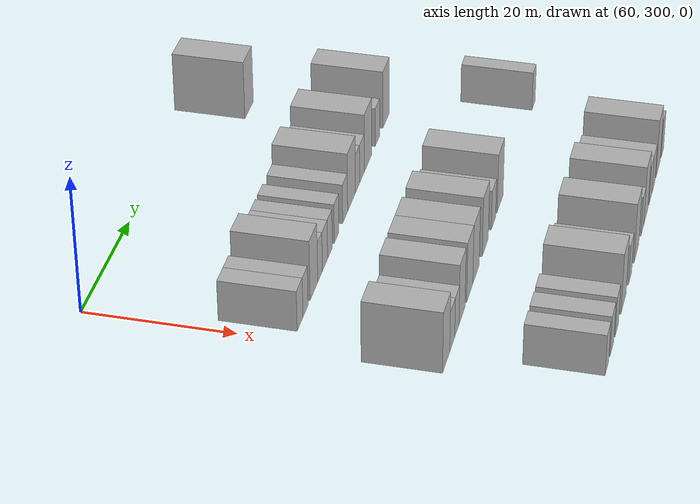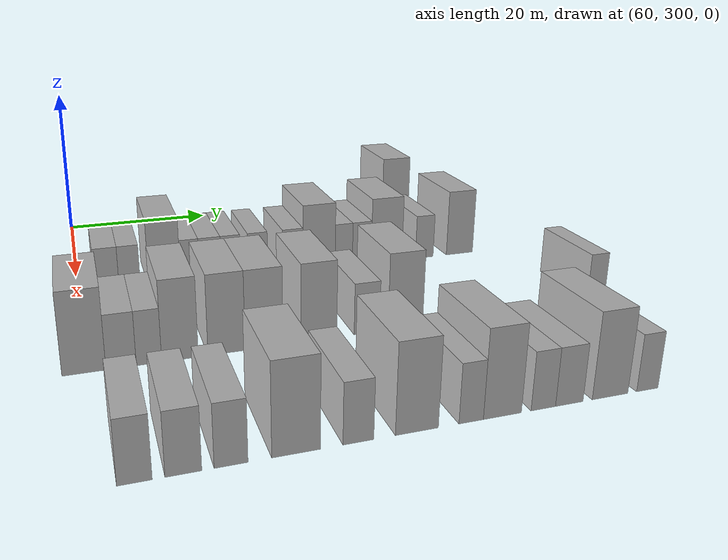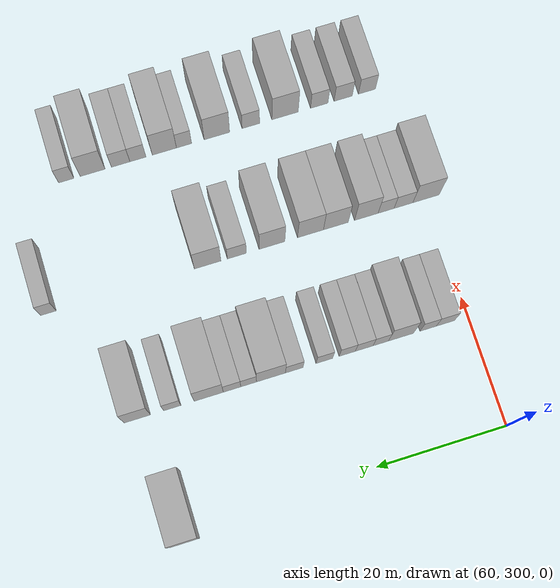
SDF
<sdf version="1.6">
 <world name="default">
  <model name="building_520">
   <static>1</static>
   <pose>63.0000 349.4359 0 0.000000 0.000000 0.000000</pose>
   <link name="link">
    <pose>0 0 4.50 0 0 0</pose>
    <collision name="collision"><geometry><box><size>10.0000 4.4609 9.0000</size></box></geometry></collision>
    <visual name="visual">
     <cast_shadows>0</cast_shadows>
     <geometry><box><size>10.0000 4.4609 9.0000</size></box></geometry>
     <material>
      <script>
       <uri>model://HANNAS_wall/materials/scripts</uri>
       <uri>model://HANNAS_wall/materials/textures</uri>
       <name>vrc/HANNAS_wall</name>
      </script>
     </material>
    </visual>
   </link>
  </model>
  <model name="building_681">
   <static>1</static>
   <pose>82.0000 303.5304 0 0.000000 0.000000 0.000000</pose>
   <link name="link">
    <pose>0 0 3.00 0 0 0</pose>
    <collision name="collision"><geometry><box><size>10.0000 2.8734 6.0000</size></box></geometry></collision>
    <visual name="visual">
     <cast_shadows>0</cast_shadows>
     <geometry><box><size>10.0000 2.8734 6.0000</size></box></geometry>
     <material>
      <script>
       <uri>model://HANNAS_wall/materials/scripts</uri>
       <uri>model://HANNAS_wall/materials/textures</uri>
       <name>vrc/HANNAS_wall</name>
      </script>
     </material>
    </visual>
   </link>
  </model>
  <model name="building_682">
   <static>1</static>
   <pose>82.0000 306.2466 0 0.000000 0.000000 0.000000</pose>
   <link name="link">
    <pose>0 0 3.00 0 0 0</pose>
    <collision name="collision"><geometry><box><size>10.0000 2.5589 6.0000</size></box></geometry></collision>
    <visual name="visual">
     <cast_shadows>0</cast_shadows>
     <geometry><box><size>10.0000 2.5589 6.0000</size></box></geometry>
     <material>
      <script>
       <uri>model://HANNAS_wall/materials/scripts</uri>
       <uri>model://HANNAS_wall/materials/textures</uri>
       <name>vrc/HANNAS_wall</name>
      </script>
     </material>
    </visual>
   </link>
  </model>
  <model name="building_683">
   <static>1</static>
   <pose>82.0000 310.4907 0 0.000000 0.000000 0.000000</pose>
   <link name="link">
    <pose>0 0 4.50 0 0 0</pose>
    <collision name="collision"><geometry><box><size>10.0000 3.9294 9.0000</size></box></geometry></collision>
    <visual name="visual">
     <cast_shadows>0</cast_shadows>
     <geometry><box><size>10.0000 3.9294 9.0000</size></box></geometry>
     <material>
      <script>
       <uri>model://HANNAS_wall/materials/scripts</uri>
       <uri>model://HANNAS_wall/materials/textures</uri>
       <name>vrc/HANNAS_wall</name>
      </script>
     </material>
    </visual>
   </link>
  </model>
  <model name="building_684">
   <static>1</static>
   <pose>82.0000 313.6562 0 0.000000 0.000000 0.000000</pose>
   <link name="link">
    <pose>0 0 3.00 0 0 0</pose>
    <collision name="collision"><geometry><box><size>10.0000 2.4016 6.0000</size></box></geometry></collision>
    <visual name="visual">
     <cast_shadows>0</cast_shadows>
     <geometry><box><size>10.0000 2.4016 6.0000</size></box></geometry>
     <material>
      <script>
       <uri>model://HANNAS_wall/materials/scripts</uri>
       <uri>model://HANNAS_wall/materials/textures</uri>
       <name>vrc/HANNAS_wall</name>
      </script>
     </material>
    </visual>
   </link>
  </model>
  <model name="building_685">
   <static>1</static>
   <pose>82.0000 316.2401 0 0.000000 0.000000 0.000000</pose>
   <link name="link">
    <pose>0 0 3.00 0 0 0</pose>
    <collision name="collision"><geometry><box><size>10.0000 2.7661 6.0000</size></box></geometry></collision>
    <visual name="visual">
     <cast_shadows>0</cast_shadows>
     <geometry><box><size>10.0000 2.7661 6.0000</size></box></geometry>
     <material>
      <script>
       <uri>model://HANNAS_wall/materials/scripts</uri>
       <uri>model://HANNAS_wall/materials/textures</uri>
       <name>vrc/HANNAS_wall</name>
      </script>
     </material>
    </visual>
   </link>
  </model>
  <model name="building_686">
   <static>1</static>
   <pose>82.0000 318.8673 0 0.000000 0.000000 0.000000</pose>
   <link name="link">
    <pose>0 0 3.00 0 0 0</pose>
    <collision name="collision"><geometry><box><size>10.0000 2.4885 6.0000</size></box></geometry></collision>
    <visual name="visual">
     <cast_shadows>0</cast_shadows>
     <geometry><box><size>10.0000 2.4885 6.0000</size></box></geometry>
     <material>
      <script>
       <uri>model://HANNAS_wall/materials/scripts</uri>
       <uri>model://HANNAS_wall/materials/textures</uri>
       <name>vrc/HANNAS_wall</name>
      </script>
     </material>
    </visual>
   </link>
  </model>
  <model name="building_687">
   <static>1</static>
   <pose>82.0000 322.3942 0 0.000000 0.000000 0.000000</pose>
   <link name="link">
    <pose>0 0 3.00 0 0 0</pose>
    <collision name="collision"><geometry><box><size>10.0000 2.5652 6.0000</size></box></geometry></collision>
    <visual name="visual">
     <cast_shadows>0</cast_shadows>
     <geometry><box><size>10.0000 2.5652 6.0000</size></box></geometry>
     <material>
      <script>
       <uri>model://HANNAS_wall/materials/scripts</uri>
       <uri>model://HANNAS_wall/materials/textures</uri>
       <name>vrc/HANNAS_wall</name>
      </script>
     </material>
    </visual>
   </link>
  </model>
  <model name="building_688">
   <static>1</static>
   <pose>82.0000 327.0456 0 0.000000 0.000000 0.000000</pose>
   <link name="link">
    <pose>0 0 3.00 0 0 0</pose>
    <collision name="collision"><geometry><box><size>10.0000 2.7375 6.0000</size></box></geometry></collision>
    <visual name="visual">
     <cast_shadows>0</cast_shadows>
     <geometry><box><size>10.0000 2.7375 6.0000</size></box></geometry>
     <material>
      <script>
       <uri>model://HANNAS_wall/materials/scripts</uri>
       <uri>model://HANNAS_wall/materials/textures</uri>
       <name>vrc/HANNAS_wall</name>
      </script>
     </material>
    </visual>
   </link>
  </model>
  <model name="building_689">
   <static>1</static>
   <pose>82.0000 330.6315 0 0.000000 0.000000 0.000000</pose>
   <link name="link">
    <pose>0 0 4.50 0 0 0</pose>
    <collision name="collision"><geometry><box><size>10.0000 4.4342 9.0000</size></box></geometry></collision>
    <visual name="visual">
     <cast_shadows>0</cast_shadows>
     <geometry><box><size>10.0000 4.4342 9.0000</size></box></geometry>
     <material>
      <script>
       <uri>model://HANNAS_wall/materials/scripts</uri>
       <uri>model://HANNAS_wall/materials/textures</uri>
       <name>vrc/HANNAS_wall</name>
      </script>
     </material>
    </visual>
   </link>
  </model>
  <model name="building_690">
   <static>1</static>
   <pose>82.0000 334.0553 0 0.000000 0.000000 0.000000</pose>
   <link name="link">
    <pose>0 0 3.00 0 0 0</pose>
    <collision name="collision"><geometry><box><size>10.0000 2.4134 6.0000</size></box></geometry></collision>
    <visual name="visual">
     <cast_shadows>0</cast_shadows>
     <geometry><box><size>10.0000 2.4134 6.0000</size></box></geometry>
     <material>
      <script>
       <uri>model://HANNAS_wall/materials/scripts</uri>
       <uri>model://HANNAS_wall/materials/textures</uri>
       <name>vrc/HANNAS_wall</name>
      </script>
     </material>
    </visual>
   </link>
  </model>
  <model name="building_691">
   <static>1</static>
   <pose>82.0000 336.5985 0 0.000000 0.000000 0.000000</pose>
   <link name="link">
    <pose>0 0 3.00 0 0 0</pose>
    <collision name="collision"><geometry><box><size>10.0000 2.6731 6.0000</size></box></geometry></collision>
    <visual name="visual">
     <cast_shadows>0</cast_shadows>
     <geometry><box><size>10.0000 2.6731 6.0000</size></box></geometry>
     <material>
      <script>
       <uri>model://HANNAS_wall/materials/scripts</uri>
       <uri>model://HANNAS_wall/materials/textures</uri>
       <name>vrc/HANNAS_wall</name>
      </script>
     </material>
    </visual>
   </link>
  </model>
  <model name="building_692">
   <static>1</static>
   <pose>82.0000 340.1604 0 0.000000 0.000000 0.000000</pose>
   <link name="link">
    <pose>0 0 4.50 0 0 0</pose>
    <collision name="collision"><geometry><box><size>10.0000 4.4508 9.0000</size></box></geometry></collision>
    <visual name="visual">
     <cast_shadows>0</cast_shadows>
     <geometry><box><size>10.0000 4.4508 9.0000</size></box></geometry>
     <material>
      <script>
       <uri>model://HANNAS_wall/materials/scripts</uri>
       <uri>model://HANNAS_wall/materials/textures</uri>
       <name>vrc/HANNAS_wall</name>
      </script>
     </material>
    </visual>
   </link>
  </model>
  <model name="building_693">
   <static>1</static>
   <pose>82.0000 345.6992 0 0.000000 0.000000 0.000000</pose>
   <link name="link">
    <pose>0 0 3.00 0 0 0</pose>
    <collision name="collision"><geometry><box><size>10.0000 2.6267 6.0000</size></box></geometry></collision>
    <visual name="visual">
     <cast_shadows>0</cast_shadows>
     <geometry><box><size>10.0000 2.6267 6.0000</size></box></geometry>
     <material>
      <script>
       <uri>model://HANNAS_wall/materials/scripts</uri>
       <uri>model://HANNAS_wall/materials/textures</uri>
       <name>vrc/HANNAS_wall</name>
      </script>
     </material>
    </visual>
   </link>
  </model>
  <model name="building_694">
   <static>1</static>
   <pose>82.0000 351.0036 0 0.000000 0.000000 0.000000</pose>
   <link name="link">
    <pose>0 0 4.50 0 0 0</pose>
    <collision name="collision"><geometry><box><size>10.0000 3.9822 9.0000</size></box></geometry></collision>
    <visual name="visual">
     <cast_shadows>0</cast_shadows>
     <geometry><box><size>10.0000 3.9822 9.0000</size></box></geometry>
     <material>
      <script>
       <uri>model://HANNAS_wall/materials/scripts</uri>
       <uri>model://HANNAS_wall/materials/textures</uri>
       <name>vrc/HANNAS_wall</name>
      </script>
     </material>
    </visual>
   </link>
  </model>
  <model name="building_854">
   <static>1</static>
   <pose>101.0000 300.0385 0 0.000000 0.000000 0.000000</pose>
   <link name="link">
    <pose>0 0 4.50 0 0 0</pose>
    <collision name="collision"><geometry><box><size>10.0000 4.2359 9.0000</size></box></geometry></collision>
    <visual name="visual">
     <cast_shadows>0</cast_shadows>
     <geometry><box><size>10.0000 4.2359 9.0000</size></box></geometry>
     <material>
      <script>
       <uri>model://HANNAS_wall/materials/scripts</uri>
       <uri>model://HANNAS_wall/materials/textures</uri>
       <name>vrc/HANNAS_wall</name>
      </script>
     </material>
    </visual>
   </link>
  </model>
  <model name="building_855">
   <static>1</static>
   <pose>101.0000 303.6534 0 0.000000 0.000000 0.000000</pose>
   <link name="link">
    <pose>0 0 3.00 0 0 0</pose>
    <collision name="collision"><geometry><box><size>10.0000 2.9938 6.0000</size></box></geometry></collision>
    <visual name="visual">
     <cast_shadows>0</cast_shadows>
     <geometry><box><size>10.0000 2.9938 6.0000</size></box></geometry>
     <material>
      <script>
       <uri>model://HANNAS_wall/materials/scripts</uri>
       <uri>model://HANNAS_wall/materials/textures</uri>
       <name>vrc/HANNAS_wall</name>
      </script>
     </material>
    </visual>
   </link>
  </model>
  <model name="building_856">
   <static>1</static>
   <pose>101.0000 306.4250 0 0.000000 0.000000 0.000000</pose>
   <link name="link">
    <pose>0 0 3.00 0 0 0</pose>
    <collision name="collision"><geometry><box><size>10.0000 2.5495 6.0000</size></box></geometry></collision>
    <visual name="visual">
     <cast_shadows>0</cast_shadows>
     <geometry><box><size>10.0000 2.5495 6.0000</size></box></geometry>
     <material>
      <script>
       <uri>model://HANNAS_wall/materials/scripts</uri>
       <uri>model://HANNAS_wall/materials/textures</uri>
       <name>vrc/HANNAS_wall</name>
      </script>
     </material>
    </visual>
   </link>
  </model>
  <model name="building_857">
   <static>1</static>
   <pose>101.0000 309.5758 0 0.000000 0.000000 0.000000</pose>
   <link name="link">
    <pose>0 0 4.50 0 0 0</pose>
    <collision name="collision"><geometry><box><size>10.0000 3.7521 9.0000</size></box></geometry></collision>
    <visual name="visual">
     <cast_shadows>0</cast_shadows>
     <geometry><box><size>10.0000 3.7521 9.0000</size></box></geometry>
     <material>
      <script>
       <uri>model://HANNAS_wall/materials/scripts</uri>
       <uri>model://HANNAS_wall/materials/textures</uri>
       <name>vrc/HANNAS_wall</name>
      </script>
     </material>
    </visual>
   </link>
  </model>
  <model name="building_858">
   <static>1</static>
   <pose>101.0000 314.4181 0 0.000000 0.000000 0.000000</pose>
   <link name="link">
    <pose>0 0 4.50 0 0 0</pose>
    <collision name="collision"><geometry><box><size>10.0000 3.9325 9.0000</size></box></geometry></collision>
    <visual name="visual">
     <cast_shadows>0</cast_shadows>
     <geometry><box><size>10.0000 3.9325 9.0000</size></box></geometry>
     <material>
      <script>
       <uri>model://HANNAS_wall/materials/scripts</uri>
       <uri>model://HANNAS_wall/materials/textures</uri>
       <name>vrc/HANNAS_wall</name>
      </script>
     </material>
    </visual>
   </link>
  </model>
  <model name="building_859">
   <static>1</static>
   <pose>101.0000 318.4368 0 0.000000 0.000000 0.000000</pose>
   <link name="link">
    <pose>0 0 4.50 0 0 0</pose>
    <collision name="collision"><geometry><box><size>10.0000 4.1048 9.0000</size></box></geometry></collision>
    <visual name="visual">
     <cast_shadows>0</cast_shadows>
     <geometry><box><size>10.0000 4.1048 9.0000</size></box></geometry>
     <material>
      <script>
       <uri>model://HANNAS_wall/materials/scripts</uri>
       <uri>model://HANNAS_wall/materials/textures</uri>
       <name>vrc/HANNAS_wall</name>
      </script>
     </material>
    </visual>
   </link>
  </model>
  <model name="building_860">
   <static>1</static>
   <pose>101.0000 324.5157 0 0.000000 0.000000 0.000000</pose>
   <link name="link">
    <pose>0 0 4.50 0 0 0</pose>
    <collision name="collision"><geometry><box><size>10.0000 4.0529 9.0000</size></box></geometry></collision>
    <visual name="visual">
     <cast_shadows>0</cast_shadows>
     <geometry><box><size>10.0000 4.0529 9.0000</size></box></geometry>
     <material>
      <script>
       <uri>model://HANNAS_wall/materials/scripts</uri>
       <uri>model://HANNAS_wall/materials/textures</uri>
       <name>vrc/HANNAS_wall</name>
      </script>
     </material>
    </visual>
   </link>
  </model>
  <model name="building_861">
   <static>1</static>
   <pose>101.0000 330.0297 0 0.000000 0.000000 0.000000</pose>
   <link name="link">
    <pose>0 0 3.00 0 0 0</pose>
    <collision name="collision"><geometry><box><size>10.0000 2.9751 6.0000</size></box></geometry></collision>
    <visual name="visual">
     <cast_shadows>0</cast_shadows>
     <geometry><box><size>10.0000 2.9751 6.0000</size></box></geometry>
     <material>
      <script>
       <uri>model://HANNAS_wall/materials/scripts</uri>
       <uri>model://HANNAS_wall/materials/textures</uri>
       <name>vrc/HANNAS_wall</name>
      </script>
     </material>
    </visual>
   </link>
  </model>
  <model name="building_862">
   <static>1</static>
   <pose>101.0000 334.6000 0 0.000000 0.000000 0.000000</pose>
   <link name="link">
    <pose>0 0 4.50 0 0 0</pose>
    <collision name="collision"><geometry><box><size>10.0000 4.1655 9.0000</size></box></geometry></collision>
    <visual name="visual">
     <cast_shadows>0</cast_shadows>
     <geometry><box><size>10.0000 4.1655 9.0000</size></box></geometry>
     <material>
      <script>
       <uri>model://HANNAS_wall/materials/scripts</uri>
       <uri>model://HANNAS_wall/materials/textures</uri>
       <name>vrc/HANNAS_wall</name>
      </script>
     </material>
    </visual>
   </link>
  </model>
  <model name="building_863">
   <static>1</static>
   <pose>101.0000 359.2920 0 0.000000 0.000000 0.000000</pose>
   <link name="link">
    <pose>0 0 3.00 0 0 0</pose>
    <collision name="collision"><geometry><box><size>10.0000 2.4062 6.0000</size></box></geometry></collision>
    <visual name="visual">
     <cast_shadows>0</cast_shadows>
     <geometry><box><size>10.0000 2.4062 6.0000</size></box></geometry>
     <material>
      <script>
       <uri>model://HANNAS_wall/materials/scripts</uri>
       <uri>model://HANNAS_wall/materials/textures</uri>
       <name>vrc/HANNAS_wall</name>
      </script>
     </material>
    </visual>
   </link>
  </model>
  <model name="building_1030">
   <static>1</static>
   <pose>120.0000 303.1628 0 0.000000 0.000000 0.000000</pose>
   <link name="link">
    <pose>0 0 3.00 0 0 0</pose>
    <collision name="collision"><geometry><box><size>10.0000 2.7721 6.0000</size></box></geometry></collision>
    <visual name="visual">
     <cast_shadows>0</cast_shadows>
     <geometry><box><size>10.0000 2.7721 6.0000</size></box></geometry>
     <material>
      <script>
       <uri>model://HANNAS_wall/materials/scripts</uri>
       <uri>model://HANNAS_wall/materials/textures</uri>
       <name>vrc/HANNAS_wall</name>
      </script>
     </material>
    </visual>
   </link>
  </model>
  <model name="building_1031">
   <static>1</static>
   <pose>120.0000 307.0281 0 0.000000 0.000000 0.000000</pose>
   <link name="link">
    <pose>0 0 3.00 0 0 0</pose>
    <collision name="collision"><geometry><box><size>10.0000 2.9586 6.0000</size></box></geometry></collision>
    <visual name="visual">
     <cast_shadows>0</cast_shadows>
     <geometry><box><size>10.0000 2.9586 6.0000</size></box></geometry>
     <material>
      <script>
       <uri>model://HANNAS_wall/materials/scripts</uri>
       <uri>model://HANNAS_wall/materials/textures</uri>
       <name>vrc/HANNAS_wall</name>
      </script>
     </material>
    </visual>
   </link>
  </model>
  <model name="building_1032">
   <static>1</static>
   <pose>120.0000 310.9150 0 0.000000 0.000000 0.000000</pose>
   <link name="link">
    <pose>0 0 3.00 0 0 0</pose>
    <collision name="collision"><geometry><box><size>10.0000 2.8151 6.0000</size></box></geometry></collision>
    <visual name="visual">
     <cast_shadows>0</cast_shadows>
     <geometry><box><size>10.0000 2.8151 6.0000</size></box></geometry>
     <material>
      <script>
       <uri>model://HANNAS_wall/materials/scripts</uri>
       <uri>model://HANNAS_wall/materials/textures</uri>
       <name>vrc/HANNAS_wall</name>
      </script>
     </material>
    </visual>
   </link>
  </model>
  <model name="building_1033">
   <static>1</static>
   <pose>120.0000 316.4415 0 0.000000 0.000000 0.000000</pose>
   <link name="link">
    <pose>0 0 4.50 0 0 0</pose>
    <collision name="collision"><geometry><box><size>10.0000 4.2380 9.0000</size></box></geometry></collision>
    <visual name="visual">
     <cast_shadows>0</cast_shadows>
     <geometry><box><size>10.0000 4.2380 9.0000</size></box></geometry>
     <material>
      <script>
       <uri>model://HANNAS_wall/materials/scripts</uri>
       <uri>model://HANNAS_wall/materials/textures</uri>
       <name>vrc/HANNAS_wall</name>
      </script>
     </material>
    </visual>
   </link>
  </model>
  <model name="building_1034">
   <static>1</static>
   <pose>120.0000 321.9609 0 0.000000 0.000000 0.000000</pose>
   <link name="link">
    <pose>0 0 3.00 0 0 0</pose>
    <collision name="collision"><geometry><box><size>10.0000 2.8007 6.0000</size></box></geometry></collision>
    <visual name="visual">
     <cast_shadows>0</cast_shadows>
     <geometry><box><size>10.0000 2.8007 6.0000</size></box></geometry>
     <material>
      <script>
       <uri>model://HANNAS_wall/materials/scripts</uri>
       <uri>model://HANNAS_wall/materials/textures</uri>
       <name>vrc/HANNAS_wall</name>
      </script>
     </material>
    </visual>
   </link>
  </model>
  <model name="building_1035">
   <static>1</static>
   <pose>120.0000 327.4018 0 0.000000 0.000000 0.000000</pose>
   <link name="link">
    <pose>0 0 4.50 0 0 0</pose>
    <collision name="collision"><geometry><box><size>10.0000 4.0812 9.0000</size></box></geometry></collision>
    <visual name="visual">
     <cast_shadows>0</cast_shadows>
     <geometry><box><size>10.0000 4.0812 9.0000</size></box></geometry>
     <material>
      <script>
       <uri>model://HANNAS_wall/materials/scripts</uri>
       <uri>model://HANNAS_wall/materials/textures</uri>
       <name>vrc/HANNAS_wall</name>
      </script>
     </material>
    </visual>
   </link>
  </model>
  <model name="building_1036">
   <static>1</static>
   <pose>120.0000 332.6505 0 0.000000 0.000000 0.000000</pose>
   <link name="link">
    <pose>0 0 3.00 0 0 0</pose>
    <collision name="collision"><geometry><box><size>10.0000 2.4163 6.0000</size></box></geometry></collision>
    <visual name="visual">
     <cast_shadows>0</cast_shadows>
     <geometry><box><size>10.0000 2.4163 6.0000</size></box></geometry>
     <material>
      <script>
       <uri>model://HANNAS_wall/materials/scripts</uri>
       <uri>model://HANNAS_wall/materials/textures</uri>
       <name>vrc/HANNAS_wall</name>
      </script>
     </material>
    </visual>
   </link>
  </model>
  <model name="building_1037">
   <static>1</static>
   <pose>120.0000 335.7842 0 0.000000 0.000000 0.000000</pose>
   <link name="link">
    <pose>0 0 4.50 0 0 0</pose>
    <collision name="collision"><geometry><box><size>10.0000 3.8510 9.0000</size></box></geometry></collision>
    <visual name="visual">
     <cast_shadows>0</cast_shadows>
     <geometry><box><size>10.0000 3.8510 9.0000</size></box></geometry>
     <material>
      <script>
       <uri>model://HANNAS_wall/materials/scripts</uri>
       <uri>model://HANNAS_wall/materials/textures</uri>
       <name>vrc/HANNAS_wall</name>
      </script>
     </material>
    </visual>
   </link>
  </model>
  <model name="building_1038">
   <static>1</static>
   <pose>120.0000 339.9899 0 0.000000 0.000000 0.000000</pose>
   <link name="link">
    <pose>0 0 3.00 0 0 0</pose>
    <collision name="collision"><geometry><box><size>10.0000 2.5603 6.0000</size></box></geometry></collision>
    <visual name="visual">
     <cast_shadows>0</cast_shadows>
     <geometry><box><size>10.0000 2.5603 6.0000</size></box></geometry>
     <material>
      <script>
       <uri>model://HANNAS_wall/materials/scripts</uri>
       <uri>model://HANNAS_wall/materials/textures</uri>
       <name>vrc/HANNAS_wall</name>
      </script>
     </material>
    </visual>
   </link>
  </model>
  <model name="building_1039">
   <static>1</static>
   <pose>120.0000 342.7369 0 0.000000 0.000000 0.000000</pose>
   <link name="link">
    <pose>0 0 3.00 0 0 0</pose>
    <collision name="collision"><geometry><box><size>10.0000 2.9337 6.0000</size></box></geometry></collision>
    <visual name="visual">
     <cast_shadows>0</cast_shadows>
     <geometry><box><size>10.0000 2.9337 6.0000</size></box></geometry>
     <material>
      <script>
       <uri>model://HANNAS_wall/materials/scripts</uri>
       <uri>model://HANNAS_wall/materials/textures</uri>
       <name>vrc/HANNAS_wall</name>
      </script>
     </material>
    </visual>
   </link>
  </model>
  <model name="building_1040">
   <static>1</static>
   <pose>120.0000 347.1670 0 0.000000 0.000000 0.000000</pose>
   <link name="link">
    <pose>0 0 4.50 0 0 0</pose>
    <collision name="collision"><geometry><box><size>10.0000 3.9265 9.0000</size></box></geometry></collision>
    <visual name="visual">
     <cast_shadows>0</cast_shadows>
     <geometry><box><size>10.0000 3.9265 9.0000</size></box></geometry>
     <material>
      <script>
       <uri>model://HANNAS_wall/materials/scripts</uri>
       <uri>model://HANNAS_wall/materials/textures</uri>
       <name>vrc/HANNAS_wall</name>
      </script>
     </material>
    </visual>
   </link>
  </model>
  <model name="building_1041">
   <static>1</static>
   <pose>120.0000 351.3379 0 0.000000 0.000000 0.000000</pose>
   <link name="link">
    <pose>0 0 3.00 0 0 0</pose>
    <collision name="collision"><geometry><box><size>10.0000 2.4153 6.0000</size></box></geometry></collision>
    <visual name="visual">
     <cast_shadows>0</cast_shadows>
     <geometry><box><size>10.0000 2.4153 6.0000</size></box></geometry>
     <material>
      <script>
       <uri>model://HANNAS_wall/materials/scripts</uri>
       <uri>model://HANNAS_wall/materials/textures</uri>
       <name>vrc/HANNAS_wall</name>
      </script>
     </material>
    </visual>
   </link>
  </model>
 </world>
</sdf>
